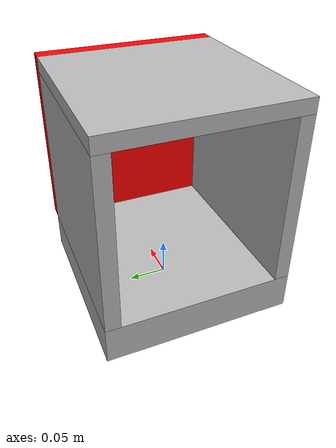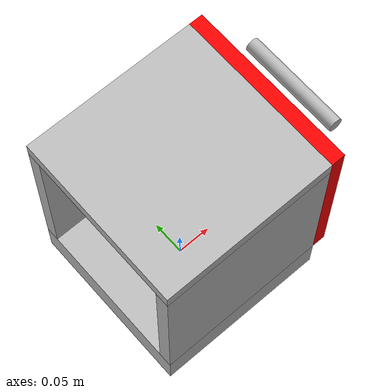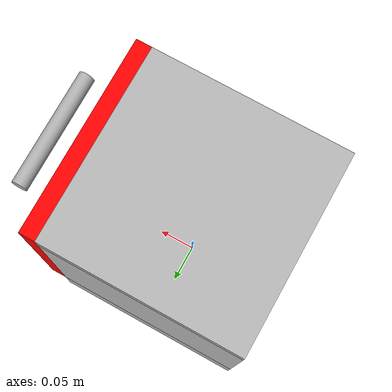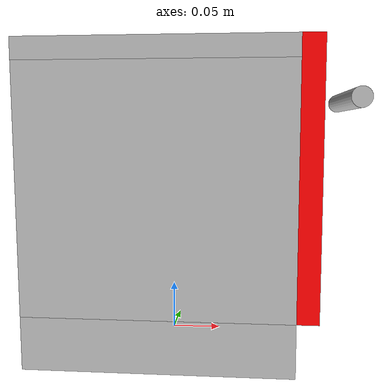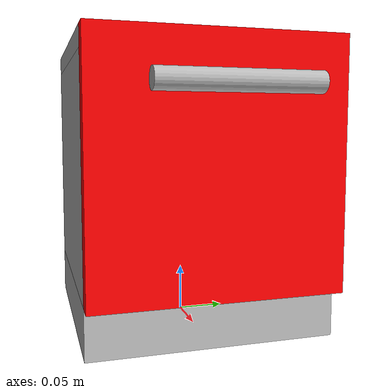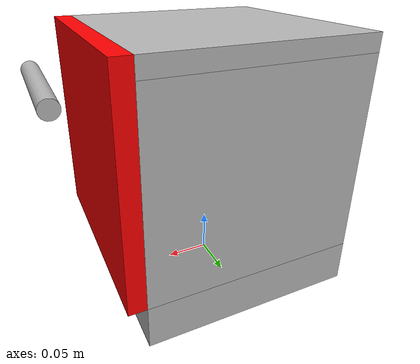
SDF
<sdf version='1.6'>
  <model name='two_bodies'>

  <link name="bottom">
  <pose> 0 0 0.025 0 0 0</pose>
  <visual name='bottom'>
    <geometry>
      <box>
       <size>0.25 0.25 0.05</size>
      </box>
    </geometry>
  </visual>

  <visual name='right_wall'>
    <pose> 0 0.115 0.14 0 0 0</pose>
    <geometry>
      <box>
       <size>0.25 0.02 0.23</size>
      </box>
    </geometry>
  </visual>

  <visual name='left_wall'>
    <pose> 0 -0.115 0.14 0 0 0</pose>
    <geometry>
      <box>
       <size>0.25 0.02 0.23</size>
      </box>
    </geometry>
  </visual>

  <collision name='bottom'>
    <geometry>
      <box>
       <size>0.249 0.249 0.049</size>
      </box>
    </geometry>
  </collision>

  <collision name='right_wall'>
    <pose> 0 0.115 0.14 0 0 0</pose>
    <geometry>
      <box>
       <size>0.249 0.019 0.229</size>
      </box>
    </geometry>
  </collision>

  <collision name='left_wall'>
    <pose> 0 -0.115 0.14 0 0 0</pose>
    <geometry>
      <box>
       <size>0.249 0.019 0.229</size>
      </box>
    </geometry>
  </collision>

  </link>

  <link name="top">
  <pose> 0 0 0.29 0 0 0</pose>

  <visual name='top'>
    <geometry>
      <box>
       <size>0.25 0.25 0.02</size>
      </box>
    </geometry>
  </visual>

  <collision name='top'>
    <geometry>
      <box>
       <size>0.249 0.249 0.019</size>
      </box>
    </geometry>
  </collision>
  </link>

  <!-- joint between bottom and top -->
  <joint name="bottom_top" type="fixed">
    <child>top</child>
    <parent>bottom</parent>
    <pose>0 0 0 0 0 0 </pose>
  </joint>

  <!-- joint between bottom and door -->
  <joint name="door_hinge" type="revolute">
    <child>door</child>
    <parent>bottom</parent>
    <pose>0 0 -0.125 0 0 0 </pose>
    <axis>
      <xyz> 0 1 0 </xyz>
      <dynamics>
        <damping>1.0</damping>
        <friction>1000.0</friction>
      </dynamics>
    </axis>
  </joint>

  <link name="door">
  <pose> 0.125 0 0.175 0 0 0</pose>
  <inertial>
      <mass>1</mass>
      <inertia>
        <ixx>0.01042</ixx>
        <ixy>0</ixy>
        <ixz>0</ixz>
        <iyy>0.00542</iyy>
        <iyz>0</iyz>
        <izz>0.00542</izz>
      </inertia>
  </inertial>

  <visual name='cylinder'>
    <pose> 0.06 0 0.075 1.5708 0 0</pose>
    <geometry>
      <cylinder>
        <length>0.15</length>
        <radius>0.01</radius>
      </cylinder>
    </geometry>
  </visual>

  <visual name='slab'>
    <pose> 0.01 0 0 0 0 0</pose>
    <geometry>
      <box>
       <size>0.02 0.25 0.25</size>
      </box>
    </geometry>

    <material>
      <diffuse>1 0 0 0.9</diffuse>
    </material>
  </visual>

  <collision name='cylinder'>
    <pose> 0.06 0 0.075 1.5708 0 0</pose>
    <geometry>
      <cylinder>
        <length>0.149</length>
        <radius>0.0099</radius>
      </cylinder>
    </geometry>
  </collision>

  <collision name='slab'>
    <pose> 0.01 0 0 0 0 0</pose>
    <geometry>
      <box>
       <size>0.019 0.249 0.249</size>
      </box>
    </geometry>
  </collision>
  </link>

  </model>
</sdf>
